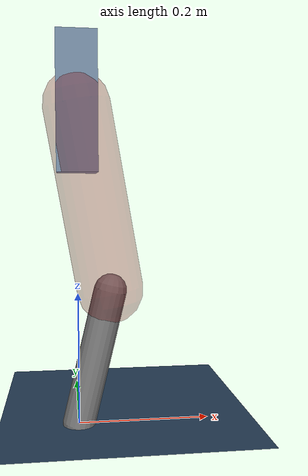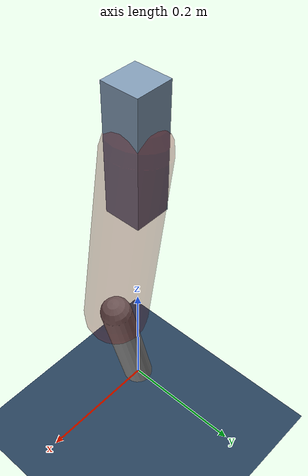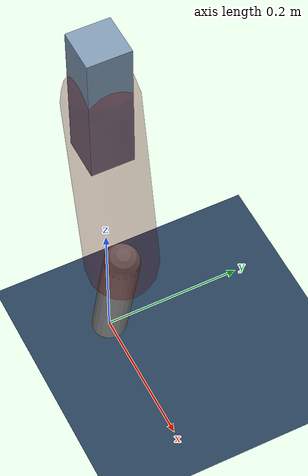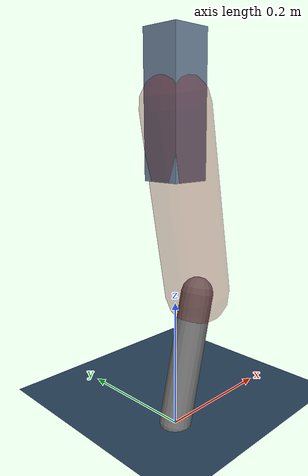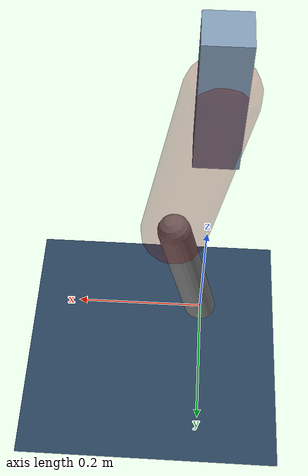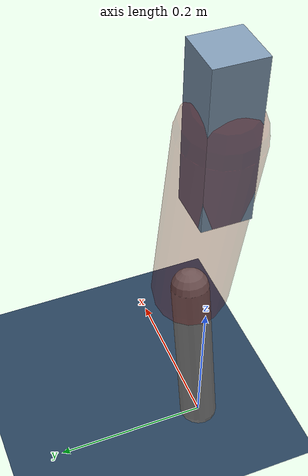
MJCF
<mujoco model="Hopper2D">
	<compiler inertiafromgeom="true" angle="radian" />
	<option timestep="0.001" integrator="implicit" cone="elliptic" solver="Newton" tolerance="1e-10" />

	<default>
		<geom contype="1" conaffinity="1" condim="3" friction="2 0.005 0.0001" solref="0.005 1" />
		<joint limited="true" damping="0.1" />
	</default>

	<asset>
		<texture name="skybox" type="skybox" builtin="gradient" rgb1=".4 .6 .8" rgb2="0 0 0" width="800" height="800" />
		<texture name="grid" type="2d" builtin="checker" rgb1=".1 .2 .3" rgb2=".2 .3 .4" width="300" height="300" mark="edge" markrgb=".2 .3 .4" />
		<material name="ground" texture="grid" texrepeat="1 1" texuniform="true" reflectance="0.1" />
		<material name="leg" rgba="0.5 0.6 0.7 1" />
	</asset>

	<worldbody>

		<geom name="floor" type="plane" size="5 5 0.25" material="ground" />

		<light directional="false" diffuse="0.8 0.8 0.8" specular="0.3 0.3 0.3" pos="0 0 2" dir="0 0 -1" />
		<light mode="targetbodycom" target="base" directional="false" diffuse="0.8 0.8 0.8" specular="0.3 0.3 0.3" pos="0 0 2" dir="0 0 -1" />

		<camera name="fixed" pos="0 -2 1" xyaxes="1 0 0 0 0 1" />
		<camera name="tracking" mode="trackcom" pos="0 -3 1" />

		<body name="root" pos="0 0 0.4809838907832229">
			<joint name="slide_x" type="slide" axis="1 0 0" range="-100 100" />
			<joint name="slide_z" type="slide" axis="0 0 1" range="0 10" />

			<body name="base" pos="0 0 0">
				<geom name="torso" type="box" size="0.03 0.03 0.1" mass="1.877" material="leg" />

				<body name="link1" pos="0 0 0" euler="0 1.3960055458506306 0">
					<joint type="hinge" axis="0 -1 0" pos="0 0 0" name="hinge1" limited="true" range="-3.14 3.14" stiffness="0" damping="0.1" />
					<geom name="thigh" type="capsule" fromto="0 0 0 0.2804490187377089 0 0" size="0.05" rgba="0.5 0 0 0.3" mass="0.936312350591814" />

					<body name="link2" pos="0.2804490187377089 0 0" euler="0 0.40856559174516693 0">
						<joint type="hinge" axis="0 -1 0" pos="0 0 0" name="hinge2" limited="true" range="-3.14 3.14" stiffness="0" damping="0.1" />
						<geom name="shank" type="capsule" fromto="0 0 0 0.21053487204551405 0 0" size="0.025" mass="0.40972789763641126" />

					</body>
				</body>
			</body>
		</body>
	</worldbody>

	<actuator>
		<motor name="torque1" joint="hinge1" ctrlrange="-69.55057825705485 69.55057825705485" ctrllimited="true" gear="1" />
		<motor name="torque2" joint="hinge2" ctrlrange="-51.43250747630037 51.43250747630037" ctrllimited="true" gear="1" />
	</actuator>
</mujoco>
